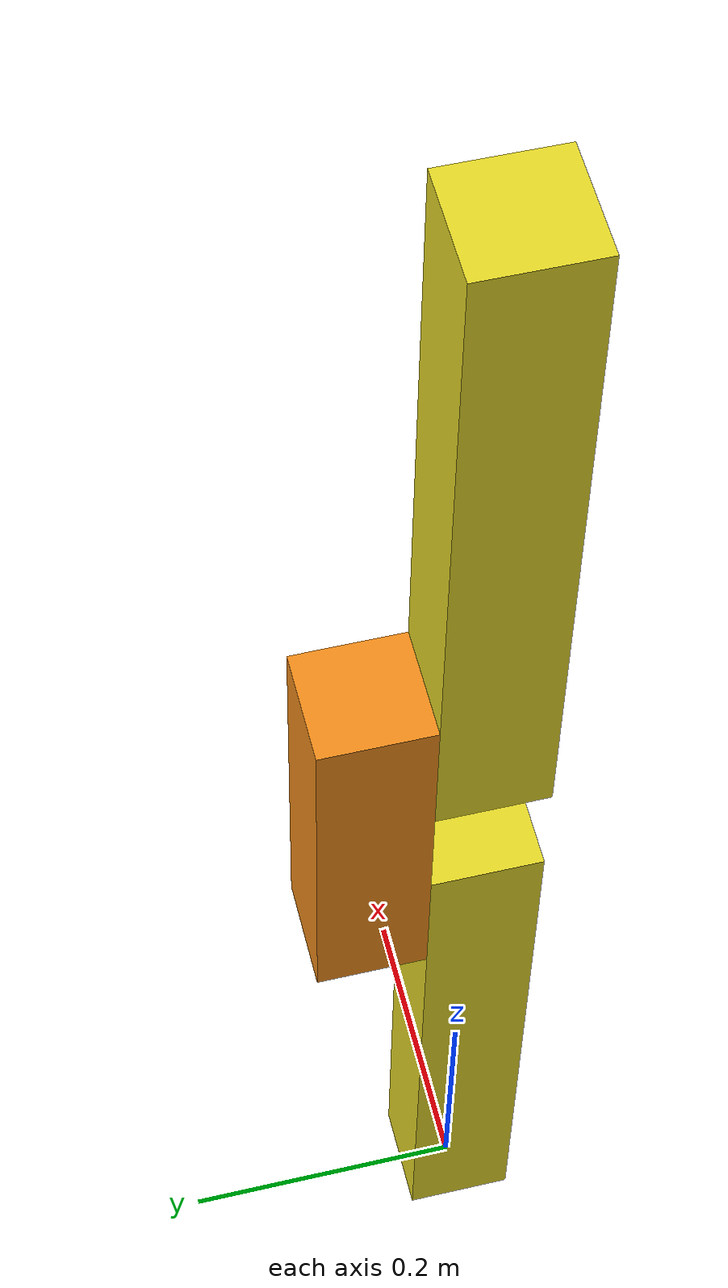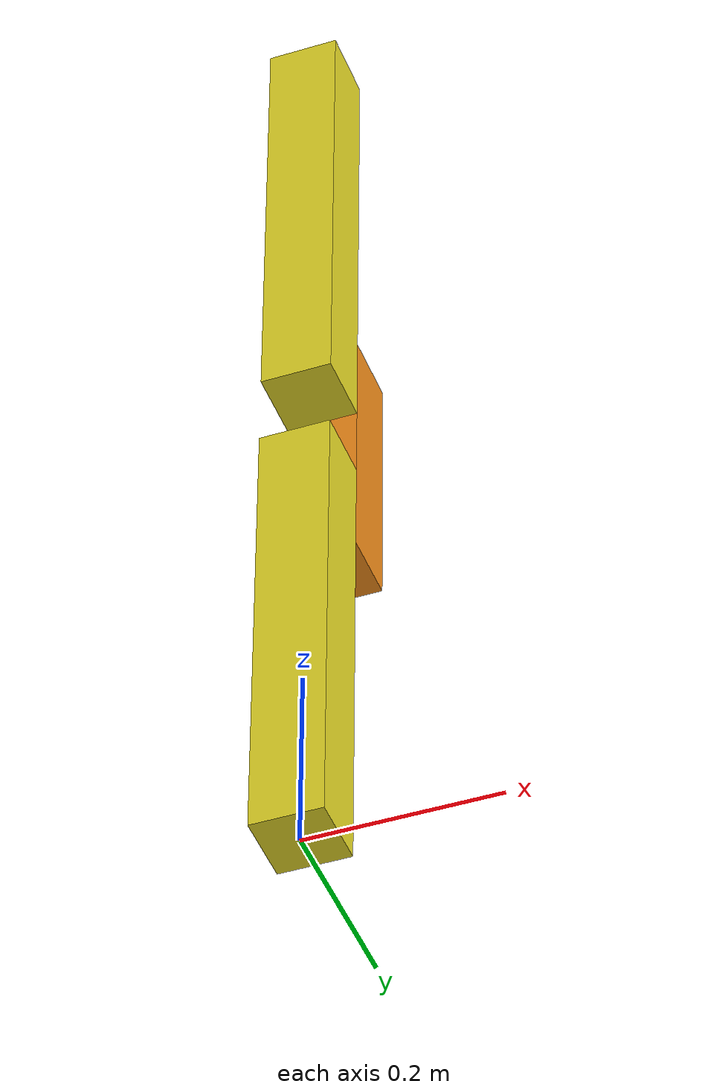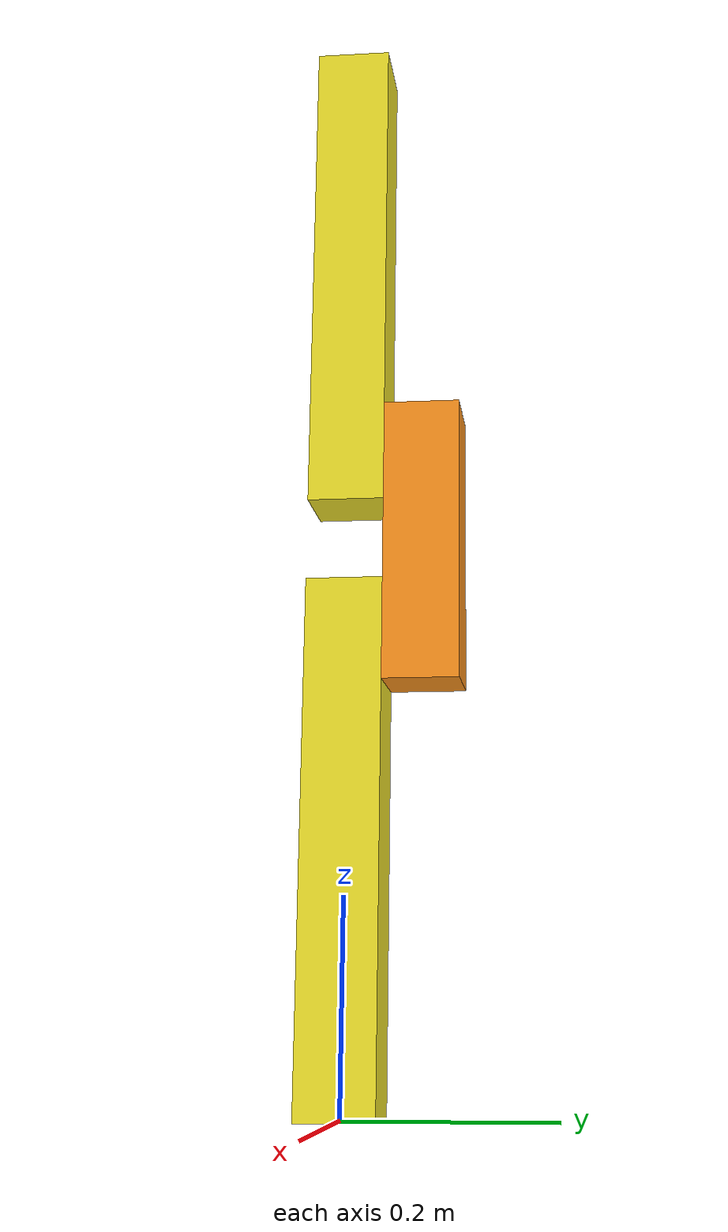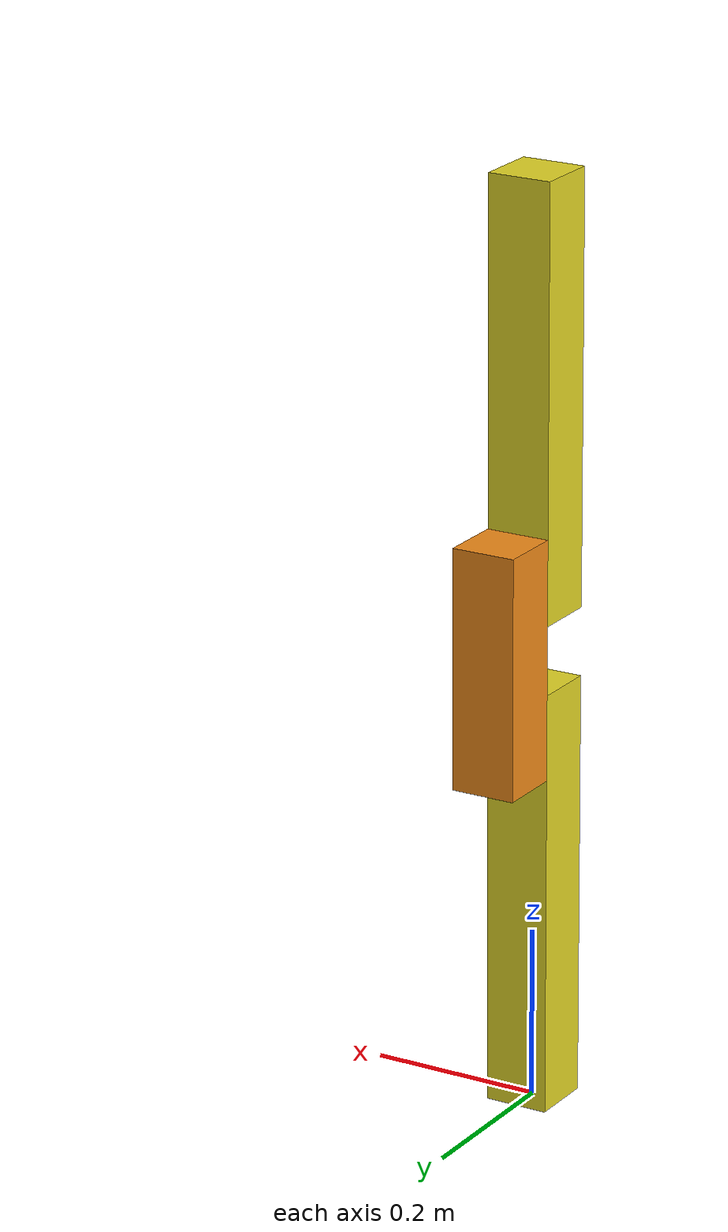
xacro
<?xml version="1.0"?>
<!-- Revolute-Revolute Manipulator -->
<!--
Copied and modified from ROS1 example -
https://github.com/ros-simulation/gazebo_ros_demos/blob/kinetic-devel/rrbot_description/urdf/rrbot.xacro
-->
<robot xmlns:xacro="http://www.ros.org/wiki/xacro" name="arm">
  <xacro:arg name="prefix" default="" />

  <!-- Import Rviz colors -->
  <xacro:include filename="$(find rrdiffbot_description)/gazebo/materials.xacro" />

  <!-- Import RRBot macro -->
  <xacro:include filename="$(find rrdiffbot_description)/urdf/arm_description.urdf.xacro" />

  <!-- Import RRBot ros2_control description -->
  <xacro:include filename="$(find rrdiffbot_description)/ros2_control/arm.ros2_control.urdf.xacro" />

  <!-- Used for fixing robot -->
  <link name="world"/>
  <gazebo reference="world">
    <static>true</static>
  </gazebo>

  <xacro:rrdiffbot_arm parent="world" prefix="$(arg prefix)">
    <origin xyz="0 0 0" rpy="0 0 0" />
  </xacro:rrdiffbot_arm>

  <xacro:rrdiffbot_arm_ros2_control
    name="RRDiffbot_arm" prefix="$(arg prefix)" />

</robot>

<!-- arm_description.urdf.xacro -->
<robot xmlns:xacro="http://www.ros.org/wiki/xacro">

  <xacro:macro name="rrdiffbot_arm" params="parent prefix *origin">

  <!-- Constants for robot dimensions -->
  <xacro:property name="mass" value="1" /> <!-- arbitrary value for mass -->
  <xacro:property name="width" value="0.075" /> <!-- Square dimensions (widthxwidth) of beams -->
  <xacro:property name="height1" value="0.5" /> <!-- Link 1 -->
  <xacro:property name="height2" value="0.28" /> <!-- Link 2 -->
  <xacro:property name="height3" value="0.5" /> <!-- Link 3 -->
  <xacro:property name="axel_offset" value="0.05" /> <!-- Space btw top of beam and the each joint -->

  <joint name="${prefix}base_joint" type="fixed">
    <xacro:insert_block name="origin" />
    <parent link="${parent}"/>
    <child link="${prefix}base_link" />
  </joint>

  <!-- Base Link -->
  <link name="${prefix}base_link">
    <collision>
      <origin xyz="0 0 ${height1/2}" rpy="0 0 0"/>
      <geometry>
        <box size="${width} ${width} ${height1}"/>
      </geometry>
    </collision>

    <visual>
      <origin xyz="0 0 ${height1/2}" rpy="0 0 0"/>
      <geometry>
        <box size="${width} ${width} ${height1}"/>
      </geometry>
      <material name="yellow"/>
    </visual>

    <inertial>
      <origin xyz="0 0 ${height1/2}" rpy="0 0 0"/>
      <mass value="${mass}"/>
      <inertia
        ixx="${mass / 12.0 * (width*width + height1*height1)}" ixy="0.0" ixz="0.0"
        iyy="${mass / 12.0 * (height1*height1 + width*width)}" iyz="0.0"
        izz="${mass / 12.0 * (width*width + width*width)}"/>
      </inertial>
    </link>

    <joint name="${prefix}joint1" type="continuous">
      <parent link="${prefix}base_link"/>
      <child link="${prefix}link1"/>
      <origin xyz="0 ${width} ${height1 - axel_offset}" rpy="0 0 0"/>
      <axis xyz="0 1 0"/>
      <dynamics damping="0.7"/>
    </joint>

    <!-- Middle Link -->
    <link name="${prefix}link1">
      <collision>
        <origin xyz="0 0 ${height2/2 - axel_offset}" rpy="0 0 0"/>
        <geometry>
          <box size="${width} ${width} ${height2}"/>
        </geometry>
      </collision>

      <visual>
        <origin xyz="0 0 ${height2/2 - axel_offset}" rpy="0 0 0"/>
        <geometry>
          <box size="${width} ${width} ${height2}"/>
        </geometry>
        <material name="orange"/>
      </visual>

      <inertial>
        <origin xyz="0 0 ${height2/2 - axel_offset}" rpy="0 0 0"/>
        <mass value="${mass}"/>
        <inertia
          ixx="${mass / 12.0 * (width*width + height2*height2)}" ixy="0.0" ixz="0.0"
          iyy="${mass / 12.0 * (height2*height2 + width*width)}" iyz="0.0"
          izz="${mass / 12.0 * (width*width + width*width)}"/>
        </inertial>
      </link>

      <joint name="${prefix}joint2" type="continuous">
        <parent link="${prefix}link1"/>
        <child link="${prefix}link2"/>
        <origin xyz="0 ${width} ${height2 - axel_offset*2}" rpy="0 0 0"/>
        <axis xyz="0 1 0"/>
        <dynamics damping="0.7"/>
      </joint>

      <!-- Top Link -->
      <link name="${prefix}link2">
        <collision>
          <origin xyz="0 ${-2*width} ${height3/2 - axel_offset}" rpy="0 0 0"/>
          <geometry>
            <box size="${width} ${width} ${height3}"/>
          </geometry>
        </collision>

        <visual>
          <origin xyz="0 ${-2*width} ${height3/2 - axel_offset}" rpy="0 0 0"/>
          <geometry>
            <box size="${width} ${width} ${height3}"/>
          </geometry>
          <material name="yellow"/>
        </visual>

        <inertial>
          <origin xyz="0 ${-2*width} ${height3/2 - axel_offset}" rpy="0 0 0"/>
          <mass value="${mass}"/>
          <inertia
            ixx="${mass / 12.0 * (width*width + height3*height3)}" ixy="0.0" ixz="0.0"
            iyy="${mass / 12.0 * (height3*height3 + width*width)}" iyz="0.0"
            izz="${mass / 12.0 * (width*width + width*width)}"/>
          </inertial>
        </link>

        <joint name="${prefix}tool_joint" type="fixed">
          <origin xyz="0 0 1" rpy="0 0 0" />
          <parent link="${prefix}link2"/>
          <child link="${prefix}tool_link" />
        </joint>

        <!-- Tool Link -->
        <link name="${prefix}tool_link">
        </link>

  </xacro:macro>

</robot>
